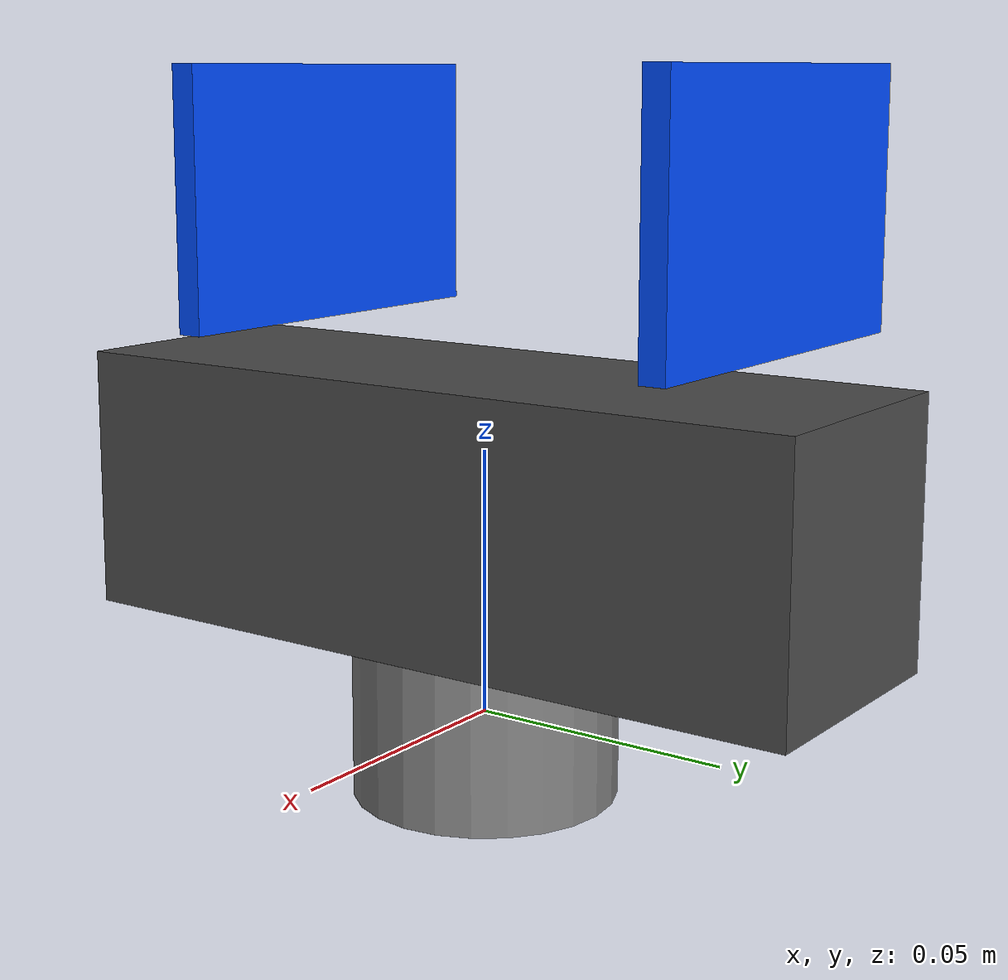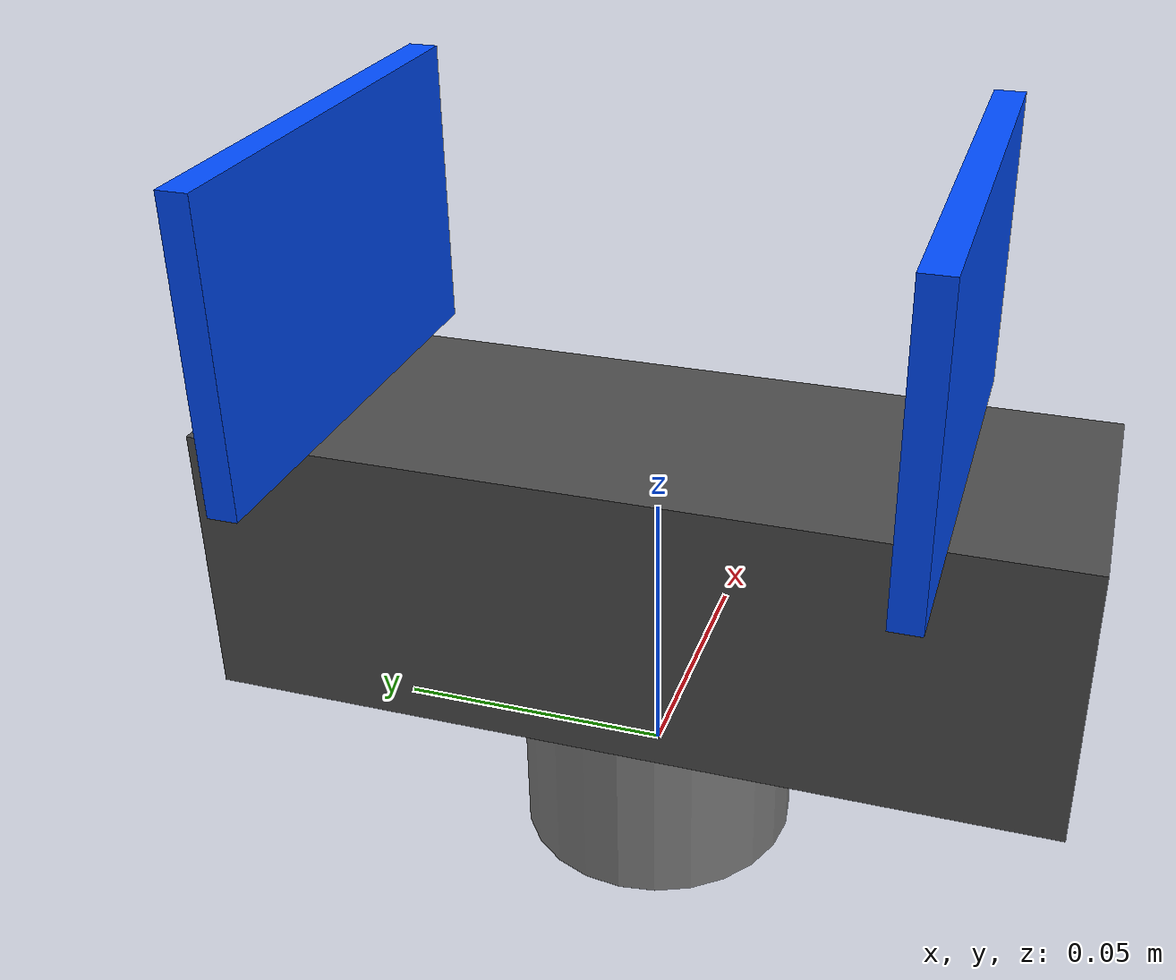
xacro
<robot name="gripper" xmlns:xacro="http://ros.org/wiki/xacro">

    <!-- Base link -->
    <link name="gripper_base">
        <visual>
            <geometry>
                <cylinder radius="0.025" length="0.03"/> <!-- Base dimensions adjusted -->
            </geometry>
            <material name="gray">
                <color rgba="0.5 0.5 0.5 1"/>
            </material>
        </visual>

    </link>

    <link name="slider">
        <visual>
            <geometry>
                <box size="0.05 0.15 0.05"/> <!-- Base dimensions adjusted -->
            </geometry>
            <material name="gray">
                <color rgba="0.3 0.3 0.3 1"/>
            </material>
        </visual>
        <collision>
            <geometry>
                <box size="0.05 0.15 0.05"/> <!-- Collision geometry matches visual -->
            </geometry>
        </collision>
    </link>

    <!-- Left finger -->
    <link name="jaw_lead">
        <visual>
            <geometry>
                <box size="0.08 0.005 0.05"/> <!-- Finger size -->
            </geometry>
            <material name="blue">
                <color rgba="0.0 0.3 1.0 1"/>
            </material>
        </visual>
        <collision>
            <geometry>
                <box size="0.08 0.005 0.03"/>
            </geometry>
        </collision>
    </link>

    <!-- Right finger -->
    <link name="jaw_follow">
        <visual>
            <geometry>
                <box size="0.08 0.005 0.05"/> <!-- Finger size -->
            </geometry>
            <material name="blue">
                <color rgba="0.0 0.3 1.0 1"/>
            </material>
        </visual>
        <collision>
            <geometry>
                <box size="0.08 0.005 0.03"/>
            </geometry>
            <origin xyz="0.0 0.0 0.01" rpy="0.0 0.0 0.0"/>
        </collision>
    </link>

    <joint name = "gripper_base_joint" type = "fixed">
        <parent link = "gripper_base"/>
        <child link = "slider"/>
        <origin xyz="0.0 0.0 0.04" rpy="0 0 0"/>
    </joint>

    <!-- Left finger joint (prismatic for symmetric opening) -->
    <joint name="right_finger_joint" type="fixed">
        <parent link="slider"/>
        <child link="jaw_lead"/>
        <origin xyz="-0.015 0.05 0.055" rpy="0 0 0"/>
        <axis xyz="0 -1 0"/>
    </joint>

    <!-- Right finger joint (prismatic for symmetric opening) -->
    <joint name="left_finger_joint" type="fixed">
        <mimic joint="right_finger_joint" multiplyer="1.0"/>
        <parent link="slider"/>
        <child link="jaw_follow"/>
        <origin xyz="-0.015 -0.05 0.055" rpy="0 0 0"/>
        <axis xyz="0 1 0"/>
    </joint>

</robot>
